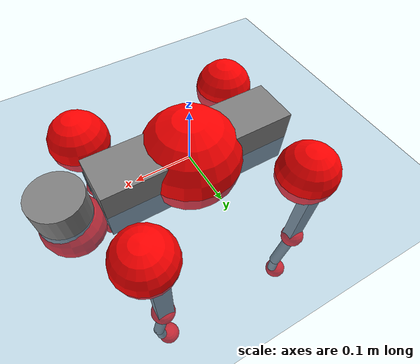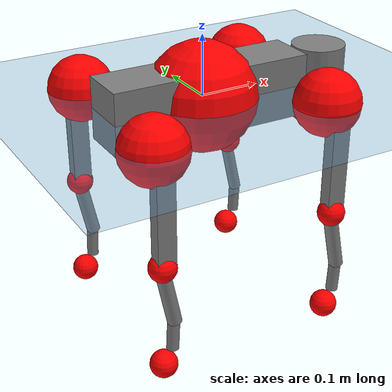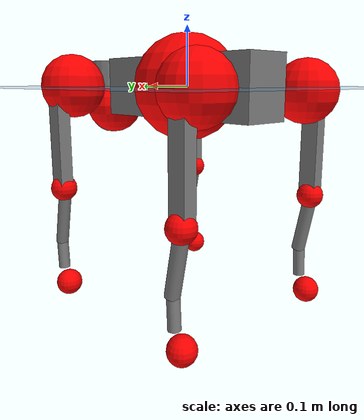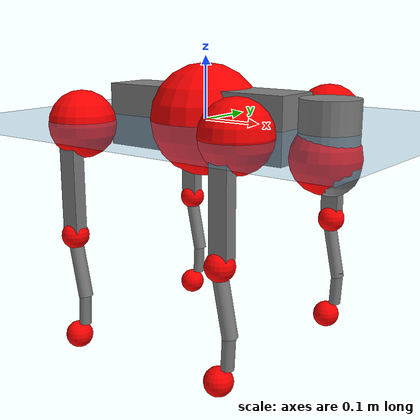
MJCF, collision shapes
<mujoco model="go2">
  <compiler angle="radian" assetdir="assets" balanceinertia="true" inertiafromgeom="false"/>

  <option timestep="0.005" density="1.2" viscosity="2e-05"/>

  <size nkey="1"/>

  <visual>
    <quality shadowsize="8192"/>
    <map shadowclip="0.5"/>
  </visual>

  <default>
    <default class="/">
      <geom contype="0" conaffinity="0" group="1" solref="-1000 -80"/>
      <site size="0.01 0.005 0.005" group="5"/>
      <general forcelimited="true" biastype="affine" gainprm="20" biasprm="0 -20 -0.5"/>
      <default class="go2">
        <joint armature="0.01" damping="0.01" frictionloss="0.2"/>
        <geom condim="1" margin="0.001"/>
        <default class="visual">
          <geom type="mesh" group="2"/>
        </default>
        <default class="collision">
          <geom group="3"/>
          <default class="foot">
            <geom size="0.022 0 0" condim="6" priority="1" friction="0.8 0.02 0.01" solimp="0.015 1 0.022"/>
          </default>
        </default>
        <default class="reward_collision_sphere">
          <geom group="5" rgba="1 0 0 1"/>
        </default>
      </default>
    </default>
  </default>

  <asset>
    <texture type="skybox" colorspace="auto" name="//unnamed_texture_0" builtin="gradient" rgb1="0.95 0.95 0.95" rgb2="0.95 0.95 0.95" width="100" height="600"/>
    <texture type="2d" colorspace="auto" name="texplane" builtin="checker" rgb1="0.345 0.575 0.748" rgb2="0.345 0.575 0.748" markrgb="1 1 1" width="512" height="512"/>
    <material name="MatPlane" class="/" texture="texplane" texuniform="true" texrepeat="2 2" specular="0.9"/>
    <material name="metal" class="/" rgba="0.9 0.95 0.95 1"/>
    <material name="black" class="/" rgba="0 0 0 1"/>
    <material name="white" class="/"/>
    <material name="gray" class="/" rgba="0.671705 0.692426 0.77427 1"/>
    <mesh name="base_0" class="/" file="base_0.obj"/>
    <mesh name="base_1" class="/" file="base_1.obj"/>
    <mesh name="base_2" class="/" file="base_2.obj"/>
    <mesh name="base_3" class="/" file="base_3.obj"/>
    <mesh name="base_4" class="/" file="base_4.obj"/>
    <mesh name="hip_0" class="/" file="hip_0.obj"/>
    <mesh name="hip_1" class="/" file="hip_1.obj"/>
    <mesh name="thigh_0" class="/" file="thigh_0.obj"/>
    <mesh name="thigh_1" class="/" file="thigh_1.obj"/>
    <mesh name="thigh_mirror_0" class="/" file="thigh_mirror_0.obj"/>
    <mesh name="thigh_mirror_1" class="/" file="thigh_mirror_1.obj"/>
    <mesh name="calf_0" class="/" file="calf_0.obj"/>
    <mesh name="calf_1" class="/" file="calf_1.obj"/>
    <mesh name="calf_mirror_0" class="/" file="calf_mirror_0.obj"/>
    <mesh name="calf_mirror_1" class="/" file="calf_mirror_1.obj"/>
    <mesh name="foot" class="/" file="foot.obj"/>
  </asset>

  <worldbody>
    <geom name="floor" class="/" size="100 100 0.125" type="plane" group="0" material="MatPlane"/>
    <light name="toplight_shadow" class="/" pos="0 0 5" dir="0.0990148 0.0990148 -0.990148" type="directional" ambient="0.04 0.04 0.04" diffuse="0.55 0.55 0.55" specular="0.12 0.12 0.12"/>
    <light name="toplight_fill" class="/" pos="0 0 5" dir="0.0990148 0.0990148 -0.990148" type="directional" castshadow="false" ambient="0.04 0.04 0.04" diffuse="0.3 0.3 0.3" specular="0.08 0.08 0.08"/>
    <body name="trunk" childclass="go2" pos="-0.000649168 0.000476383 -0.000876986" quat="1 -0.00011642 0.0005769 0.00042548">
      <inertial pos="0.0154975 0.00200747 -0.00443921" quat="0.00637152 0.710339 -0.00259581 0.703826" mass="4.9639" diaginertia="0.0321037 0.156379 0.00955318"/>
      <joint name="//unnamed_joint_0" type="free" armature="0" damping="0" frictionloss="0"/>
      <geom name="//unnamed_geom_1" class="visual" material="black" mesh="base_0"/>
      <geom name="//unnamed_geom_2" class="visual" material="black" mesh="base_1"/>
      <geom name="//unnamed_geom_3" class="visual" material="black" mesh="base_2"/>
      <geom name="//unnamed_geom_4" class="visual" material="white" mesh="base_3"/>
      <geom name="//unnamed_geom_5" class="visual" material="gray" mesh="base_4"/>
      <geom name="trunk_1" class="collision" size="0.169948 0.0422384 0.0514993" type="box"/>
      <geom name="trunk_2" class="collision" size="0.0451748 0.0406573" pos="0.223326 0 0.00829483" type="cylinder"/>
      <geom name="trunk_3" class="collision" size="0.0424643" pos="0.229594 0 -0.049769"/>
      <geom name="//unnamed_geom_9" class="reward_collision_sphere" size="0.0903496"/>
      <geom name="//unnamed_geom_10" class="reward_collision_sphere" size="0.0542097" pos="0.219408 0 -0.0373267"/>
      <site name="imu" pos="-0.0191118 0.0141534 0.0227084" size="0.00903496"/>
      <camera name="track" pos="0 -2.19481 0" quat="0.707107 0.707107 0 0" mode="trackcom"/>
      <camera name="ego_camera" pos="0.244483 0 0.0373267" quat="-0.5 -0.5 0.5 0.5"/>
      <body name="FL_hip" pos="0.150277 0.0546284 0.00136597" quat="1 0.000246381 -0.000188361 -0.000389534">
        <inertial pos="-0.00603016 0.00178283 -0.000368038" quat="0.495286 0.500365 0.502441 0.501876" mass="0.483843" diaginertia="0.00026029 0.000899671 0.000181474"/>
        <joint name="FL_hip_joint" pos="0 0 0" axis="1 -0.000792638 0.000224831" range="-1.05767 1.10512" armature="0.00913034" damping="0" frictionloss="0.205771"/>
        <geom name="//unnamed_geom_11" class="visual" material="metal" mesh="hip_0"/>
        <geom name="//unnamed_geom_12" class="visual" material="gray" mesh="hip_1"/>
        <geom name="//unnamed_geom_13" class="collision" size="0.0415608 0.0180699" pos="0 0.0877925 0" quat="0.707107 0.707107 0 0" type="cylinder"/>
        <geom name="//unnamed_geom_14" class="reward_collision_sphere" size="0.0542097" pos="0 0.0768184 0"/>
        <body name="FL_thigh" pos="-0.0028867 0.107424 0.000506583" quat="1 0.00034363 6.43195e-05 -6.94426e-05">
          <inertial pos="-0.00258561 -0.0244268 -0.0260455" quat="0.828817 0.0769335 -0.0209 0.55381" mass="0.835779" diaginertia="0.00172196 0.0090494 0.000326578"/>
          <joint name="FL_thigh_joint" pos="0 0 0" axis="0.00841152 0.999952 -0.0050341" stiffness="0.00366589" range="-1.6239 3.49846" armature="0.00796168" damping="0.0189806" frictionloss="0.181162"/>
          <geom name="//unnamed_geom_15" class="visual" material="metal" mesh="thigh_0"/>
          <geom name="//unnamed_geom_16" class="visual" material="gray" mesh="thigh_1"/>
          <geom name="//unnamed_geom_17" class="collision" size="0.0962223 0.0110678 0.0153594" pos="0 0 -0.0883399" quat="0.707107 0 0.707107 0" type="box"/>
          <body name="FL_calf" pos="0.00121526 -0.00226222 -0.177708" quat="1 -0.000122229 -7.74071e-05 8.36664e-05">
            <inertial pos="0.00480578 -0.00198274 -0.116458" quat="0.709684 0.00353679 -0.00851959 0.704459" mass="0.18036" diaginertia="0.000435702 0.00232506 2.0954e-05"/>
            <joint name="FL_calf_joint" pos="0 0 0" axis="-0.0160272 0.999872 -0.000311346" range="-2.7277 -0.779219" armature="0.00861425" damping="0" frictionloss="0.186506"/>
            <geom name="//unnamed_geom_18" class="visual" material="gray" mesh="calf_0"/>
            <geom name="//unnamed_geom_19" class="visual" material="black" mesh="calf_1"/>
            <geom name="FL_calf0" class="collision" size="0.0108419 0.0542097" pos="0.00626879 0 -0.049769" quat="0.994493 0 -0.104807 0" type="cylinder"/>
            <geom name="//unnamed_geom_21" class="collision" size="0.00993845 0.0293636" pos="0.015672 0 -0.122763" quat="0.999688 0 0.0249974 0" type="cylinder"/>
            <geom name="//unnamed_geom_22" class="visual" pos="0 0 -0.17668" quat="1 0 0 0" material="black" mesh="foot"/>
            <geom name="FL_foot" class="foot" size="0.015403" pos="-0.0015672 0 -0.17668"/>
            <geom name="//unnamed_geom_24" class="reward_collision_sphere" size="0.0225874"/>
            <geom name="//unnamed_geom_25" class="reward_collision_sphere" size="0.0225874" pos="-0.0015672 0 -0.17668"/>
            <site name="FL_foot" class="foot" pos="-0.0015672 0 -0.17668" size="0.00903496"/>
          </body>
        </body>
      </body>
      <body name="FR_hip" pos="0.150366 -0.0499385 0.00328925" quat="1 0.000293259 0.000169786 3.29736e-05">
        <inertial pos="-0.00586858 -0.00245837 -0.000901546" quat="0.500196 0.504754 0.49654 0.498472" mass="0.494748" diaginertia="0.000256022 0.000934356 0.000183646"/>
        <joint name="FR_hip_joint" pos="0 0 0" axis="0.999904 -0.00182276 0.0137491" range="-1.06982 0.993252" armature="0.00944205" damping="0" frictionloss="0.206256"/>
        <geom name="//unnamed_geom_26" class="visual" pos="0 2.33404e-09 1.00112e-07" quat="4.63268e-05 1 0 0" material="metal" mesh="hip_0"/>
        <geom name="//unnamed_geom_27" class="visual" pos="0 3.78375e-09 -2.47615e-07" quat="4.63268e-05 1 0 0" material="gray" mesh="hip_1"/>
        <geom name="//unnamed_geom_28" class="collision" size="0.0415608 0.0180699" pos="0 -0.0877925 0" quat="0.707107 0.707107 0 0" type="cylinder"/>
        <geom name="//unnamed_geom_29" class="reward_collision_sphere" size="0.0542097" pos="0 -0.0768184 0"/>
        <body name="FR_thigh" pos="-0.000441176 -0.107697 -0.00212444" quat="0.999999 0.00109364 -0.0003801 0.000522966">
          <inertial pos="-0.00478635 0.023905 -0.0292038" quat="0.546282 -0.0204694 0.0858508 0.832939" mass="0.878196" diaginertia="0.00174311 0.00904205 0.000356431"/>
          <joint name="FR_thigh_joint" pos="0 0 0" axis="4.06876e-05 -1 -0.000145504" stiffness="0.00956734" range="-3.48813 1.51276" armature="0.00781181" damping="0.0138495" frictionloss="0.158742"/>
          <geom name="//unnamed_geom_30" class="visual" material="metal" mesh="thigh_mirror_0"/>
          <geom name="//unnamed_geom_31" class="visual" material="gray" mesh="thigh_mirror_1"/>
          <geom name="//unnamed_geom_32" class="collision" size="0.0962223 0.0110678 0.0153594" pos="0 0 -0.0883399" quat="0.707107 0 0.707107 0" type="box"/>
          <body name="FR_calf" pos="-0.00186854 -0.00158699 -0.175775" quat="1 -3.20566e-05 0.00017825 -7.98472e-05">
            <inertial pos="0.00410426 -0.000869173 -0.115305" quat="0.704566 -0.00322608 0.00247091 0.709626" mass="0.175035" diaginertia="0.000437169 0.00233902 1.97349e-05"/>
            <joint name="FR_calf_joint" pos="0 0 0" axis="0.00260572 -0.999996 -0.000923873" range="0.845787 2.73696" armature="0.00872688" damping="0" frictionloss="0.156544"/>
            <geom name="//unnamed_geom_33" class="visual" material="gray" mesh="calf_mirror_0"/>
            <geom name="//unnamed_geom_34" class="visual" material="black" mesh="calf_mirror_1"/>
            <geom name="FR_calf0" class="collision" size="0.0117454 0.0542097" pos="0.00783598 0 -0.049769" quat="0.995004 0 -0.0998334 0" type="cylinder"/>
            <geom name="//unnamed_geom_36" class="collision" size="0.00993845 0.0293636" pos="0.015672 0 -0.122763" quat="0.999688 0 0.0249974 0" type="cylinder"/>
            <geom name="//unnamed_geom_37" class="visual" pos="0 0 -0.17668" quat="1 0 0 0" material="black" mesh="foot"/>
            <geom name="FR_foot" class="foot" size="0.0205103" pos="-0.0015672 0 -0.17668"/>
            <geom name="//unnamed_geom_39" class="reward_collision_sphere" size="0.0225874"/>
            <geom name="//unnamed_geom_40" class="reward_collision_sphere" size="0.0225874" pos="-0.0015672 0 -0.17668"/>
            <site name="FR_foot" class="foot" pos="-0.0015672 0 -0.17668" size="0.00903496"/>
          </body>
        </body>
      </body>
      <body name="RL_hip" pos="-0.151817 0.0485414 -2.56713e-05" quat="0.999999 -0.000715854 -0.00104659 0.000230609">
        <inertial pos="0.00272279 0.000508955 -0.000818313" quat="0.509982 0.498705 0.487718 0.503332" mass="0.487395" diaginertia="0.000243599 0.000941088 0.000176078"/>
        <joint name="RL_hip_joint" pos="0 0 0" axis="-0.999996 0.0016166 -0.00231925" range="-1.08738 1.07749" armature="0.00998414" damping="0.0180959" frictionloss="0.17673"/>
        <geom name="//unnamed_geom_41" class="visual" pos="3.99723e-10 0 7.8355e-08" quat="4.63268e-05 0 1 0" material="metal" mesh="hip_0"/>
        <geom name="//unnamed_geom_42" class="visual" pos="6.47999e-10 0 6.94897e-08" quat="4.63268e-05 0 1 0" material="gray" mesh="hip_1"/>
        <geom name="//unnamed_geom_43" class="collision" size="0.0415608 0.0180699" pos="0 0.0877925 0" quat="0.707107 0.707107 0 0" type="cylinder"/>
        <geom name="//unnamed_geom_44" class="reward_collision_sphere" size="0.0542097" pos="0 0.0768184 0"/>
        <body name="RL_thigh" pos="-0.00120179 0.103086 -0.00190864" quat="0.999999 0.000299309 -0.00130185 0.000261747">
          <inertial pos="-0.00248697 -0.0269311 -0.0277668" quat="0.829801 0.0846422 -0.0203513 0.551227" mass="0.860729" diaginertia="0.00179127 0.00925724 0.000357377"/>
          <joint name="RL_thigh_joint" pos="0 0 0" axis="-0.00103196 0.999992 0.00382112" stiffness="0.0144324" range="-0.579014 4.52395" armature="0.00872103" damping="0.0138497" frictionloss="0.203817"/>
          <geom name="//unnamed_geom_45" class="visual" material="metal" mesh="thigh_0"/>
          <geom name="//unnamed_geom_46" class="visual" material="gray" mesh="thigh_1"/>
          <geom name="//unnamed_geom_47" class="collision" size="0.0962223 0.0110678 0.0153594" pos="0 0 -0.0883399" quat="0.707107 0 0.707107 0" type="box"/>
          <body name="RL_calf" pos="-0.00122202 0.00275779 -0.178944" quat="0.999999 0.0010164 0.000558282 0.000199902">
            <inertial pos="0.00386691 0.00213725 -0.117705" quat="0.713903 -0.00538207 -0.0031301 0.700217" mass="0.169904" diaginertia="0.000426021 0.00217375 2.07711e-05"/>
            <joint name="RL_calf_joint" pos="0 0 0" axis="-0.00757606 0.999931 -0.00897941" range="-2.72738 -0.839298" armature="0.00976904" damping="0.00505845" frictionloss="0.177797"/>
            <geom name="//unnamed_geom_48" class="visual" material="gray" mesh="calf_0"/>
            <geom name="//unnamed_geom_49" class="visual" material="black" mesh="calf_1"/>
            <geom name="RL_calf0" class="collision" size="0.0117454 0.0542097" pos="0.00783598 0 -0.049769" quat="0.995004 0 -0.0998334 0" type="cylinder"/>
            <geom name="//unnamed_geom_51" class="collision" size="0.00993845 0.0293636" pos="0.015672 0 -0.122763" quat="0.999688 0 0.0249974 0" type="cylinder"/>
            <geom name="//unnamed_geom_52" class="visual" pos="0 0 -0.17668" quat="1 0 0 0" material="black" mesh="foot"/>
            <geom name="RL_foot" class="foot" size="0.0205981" pos="-0.0015672 0 -0.17668"/>
            <geom name="//unnamed_geom_54" class="reward_collision_sphere" size="0.0225874"/>
            <geom name="//unnamed_geom_55" class="reward_collision_sphere" size="0.0225874" pos="-0.0015672 0 -0.17668"/>
            <site name="RL_foot" class="foot" pos="-0.0015672 0 -0.17668" size="0.00903496"/>
          </body>
        </body>
      </body>
      <body name="RR_hip" pos="-0.150891 -0.0503224 -0.00667493" quat="1 -6.81179e-05 -9.60554e-05 3.1452e-05">
        <inertial pos="0.00171576 -0.00476959 0.000168173" quat="0.499106 0.499362 0.491833 0.50954" mass="0.504904" diaginertia="0.000268276 0.000953826 0.00019711"/>
        <joint name="RR_hip_joint" pos="0 0 0" axis="-0.999999 0.00165314 0.000304271" range="-1.09721 1.04706" armature="0.00910427" damping="0.00234184" frictionloss="0.183799"/>
        <geom name="//unnamed_geom_56" class="visual" pos="-3.88859e-10 2.33404e-09 -2.17567e-08" quat="2.14617e-09 4.63268e-05 4.63268e-05 -1" material="metal" mesh="hip_0"/>
        <geom name="//unnamed_geom_57" class="visual" pos="-6.74871e-10 3.78375e-09 3.17104e-07" quat="2.14617e-09 4.63268e-05 4.63268e-05 -1" material="gray" mesh="hip_1"/>
        <geom name="//unnamed_geom_58" class="collision" size="0.0415608 0.0180699" pos="0 -0.0877925 0" quat="0.707107 0.707107 0 0" type="cylinder"/>
        <geom name="//unnamed_geom_59" class="reward_collision_sphere" size="0.0542097" pos="0 -0.0768184 0"/>
        <body name="RR_thigh" pos="-0.000349216 -0.103092 -0.00216702" quat="1 6.76515e-05 4.54798e-05 -0.000112218">
          <inertial pos="-0.000955974 0.0218993 -0.0268514" quat="0.560646 -0.0116568 0.0872372 0.823365" mass="0.82751" diaginertia="0.00176728 0.00909464 0.000341404"/>
          <joint name="RR_thigh_joint" pos="0 0 0" axis="0.018085 -0.999793 -0.00930364" range="-4.53031 0.472966" armature="0.00908876" damping="0" frictionloss="0.170675"/>
          <geom name="//unnamed_geom_60" class="visual" material="metal" mesh="thigh_mirror_0"/>
          <geom name="//unnamed_geom_61" class="visual" material="gray" mesh="thigh_mirror_1"/>
          <geom name="//unnamed_geom_62" class="collision" size="0.0962223 0.0110678 0.0153594" pos="0 0 -0.0883399" quat="0.707107 0 0.707107 0" type="box"/>
          <body name="RR_calf" pos="-0.00208316 0.00188251 -0.178236" quat="1 -7.02544e-05 1.17942e-05 4.3348e-05">
            <inertial pos="0.00624442 0.000414304 -0.117243" quat="0.70579 -0.00496927 0.00884427 0.708348" mass="0.183778" diaginertia="0.000456958 0.00249529 2.12236e-05"/>
            <joint name="RR_calf_joint" pos="0 0 0" axis="-0.00183209 -0.999991 0.00389719" range="0.874842 2.70682" armature="0.00920641" damping="0.0065954" frictionloss="0.169266"/>
            <geom name="//unnamed_geom_63" class="visual" material="gray" mesh="calf_mirror_0"/>
            <geom name="//unnamed_geom_64" class="visual" material="black" mesh="calf_mirror_1"/>
            <geom name="RR_calf0" class="collision" size="0.0117454 0.0542097" pos="0.00783598 0 -0.049769" quat="0.995004 0 -0.0998334 0" type="cylinder"/>
            <geom name="//unnamed_geom_66" class="collision" size="0.00993845 0.0293636" pos="0.015672 0 -0.122763" quat="0.999688 0 0.0249974 0" type="cylinder"/>
            <geom name="//unnamed_geom_67" class="visual" pos="0 0 -0.17668" quat="1 0 0 0" material="black" mesh="foot"/>
            <geom name="RR_foot" class="foot" size="0.0213179" pos="-0.0015672 0 -0.17668"/>
            <geom name="//unnamed_geom_69" class="reward_collision_sphere" size="0.0225874"/>
            <geom name="//unnamed_geom_70" class="reward_collision_sphere" size="0.0225874" pos="-0.0015672 0 -0.17668"/>
            <site name="RR_foot" class="foot" pos="-0.0015672 0 -0.17668" size="0.00903496"/>
          </body>
        </body>
      </body>
    </body>
  </worldbody>

  <contact>
    <pair class="/" geom1="floor" geom2="FL_foot" name="//unnamed_contact_0"/>
    <pair class="/" geom1="floor" geom2="FR_foot" name="//unnamed_contact_1"/>
    <pair class="/" geom1="floor" geom2="RL_foot" name="//unnamed_contact_2"/>
    <pair class="/" geom1="floor" geom2="RR_foot" name="//unnamed_contact_3"/>
  </contact>

  <actuator>
    <general name="FL_hip" class="/" joint="FL_hip_joint" forcerange="-21.873 21.873" gainprm="18.3676" biasprm="0 -18.3676 -0.434991"/>
    <general name="FL_thigh" class="/" joint="FL_thigh_joint" forcerange="-21.5094 21.5094" gainprm="18.3676" biasprm="0 -18.3676 -0.434991"/>
    <general name="FL_calf" class="/" joint="FL_calf_joint" forcerange="-45.3638 45.3638" gainprm="18.3676" biasprm="0 -18.3676 -0.434991"/>
    <general name="FR_hip" class="/" joint="FR_hip_joint" forcerange="-21.4837 21.4837" gainprm="18.3676" biasprm="0 -18.3676 -0.434991"/>
    <general name="FR_thigh" class="/" joint="FR_thigh_joint" forcerange="-23.6172 23.6172" gainprm="18.3676" biasprm="0 -18.3676 -0.434991"/>
    <general name="FR_calf" class="/" joint="FR_calf_joint" forcerange="-40.0555 40.0555" gainprm="18.3676" biasprm="0 -18.3676 -0.434991"/>
    <general name="RL_hip" class="/" joint="RL_hip_joint" forcerange="-21.4706 21.4706" gainprm="18.3676" biasprm="0 -18.3676 -0.434991"/>
    <general name="RL_thigh" class="/" joint="RL_thigh_joint" forcerange="-20.6509 20.6509" gainprm="18.3676" biasprm="0 -18.3676 -0.434991"/>
    <general name="RL_calf" class="/" joint="RL_calf_joint" forcerange="-43.8693 43.8693" gainprm="18.3676" biasprm="0 -18.3676 -0.434991"/>
    <general name="RR_hip" class="/" joint="RR_hip_joint" forcerange="-21.2196 21.2196" gainprm="18.3676" biasprm="0 -18.3676 -0.434991"/>
    <general name="RR_thigh" class="/" joint="RR_thigh_joint" forcerange="-19.8295 19.8295" gainprm="18.3676" biasprm="0 -18.3676 -0.434991"/>
    <general name="RR_calf" class="/" joint="RR_calf_joint" forcerange="-45.4961 45.4961" gainprm="18.3676" biasprm="0 -18.3676 -0.434991"/>
  </actuator>

  <sensor>
    <gyro site="imu" name="imu_angular_velocity"/>
    <velocimeter site="imu" name="imu_linear_velocity"/>
    <framelinvel objtype="site" objname="FL_foot" name="FL_foot_global_linear_velocity"/>
    <framelinvel objtype="site" objname="FR_foot" name="FR_foot_global_linear_velocity"/>
    <framelinvel objtype="site" objname="RL_foot" name="RL_foot_global_linear_velocity"/>
    <framelinvel objtype="site" objname="RR_foot" name="RR_foot_global_linear_velocity"/>
  </sensor>

  <keyframe>
    <key name="home" qpos="0 0 0.325 1 0 0 0 0.1 0.8 -1.5 -0.1 -0.8 1.5 -0.1 0.8 -1.5 0.1 -0.8 1.5"/>
  </keyframe>
</mujoco>
